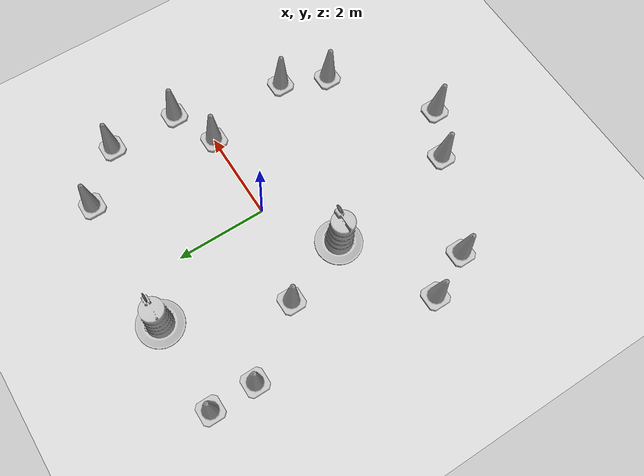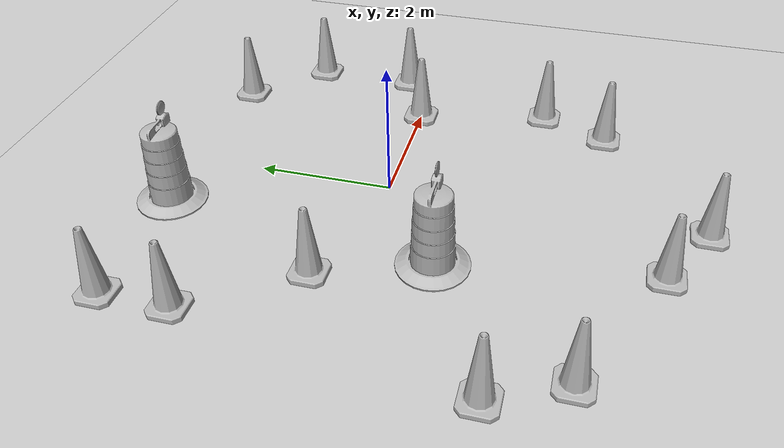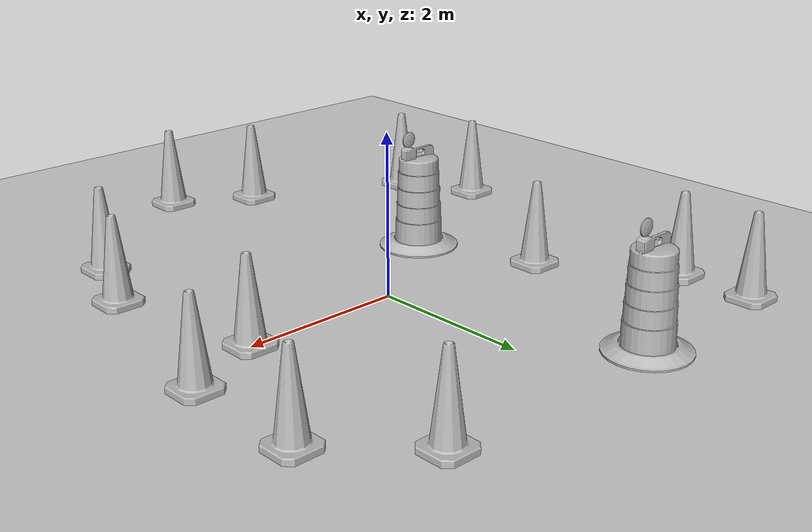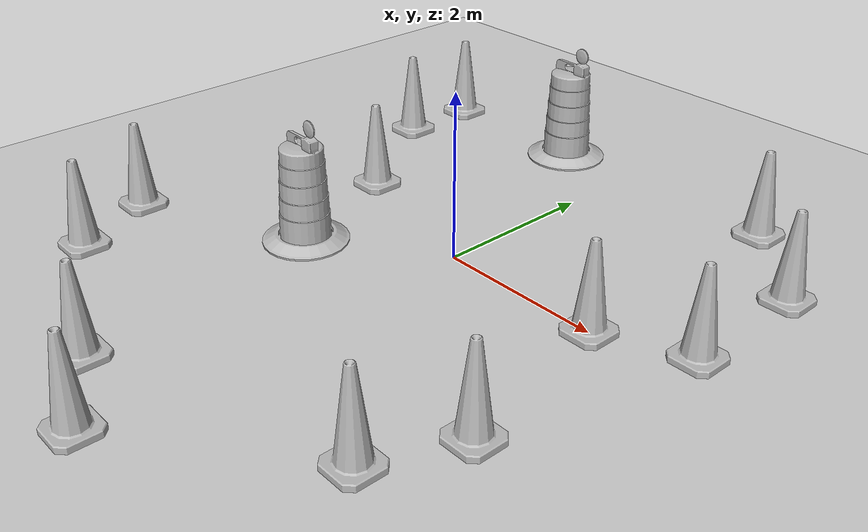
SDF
<sdf version="1.7">
 <world name="default">
  <light name="sun" type="directional">
   <pose>0 0 10 0 -0 0</pose>
   <diffuse>0.8 0.8 0.8 1</diffuse>
   <specular>0.2 0.2 0.2 1</specular>
   <attenuation>
    <range>1000</range>
    <constant>0.9</constant>
    <linear>0.01</linear>
    <quadratic>0.001</quadratic>
   </attenuation>
   <direction>-0.5 0.1 -0.9</direction>
   <spot><inner_angle>0</inner_angle><outer_angle>0</outer_angle><falloff>0</falloff></spot>
  </light>
  <model name="ground_plane">
   <static>1</static>
   <link name="link">
    <collision name="collision">
     <geometry><plane><normal>0 0 1</normal><size>100 100</size></plane></geometry>
     <surface>
      <contact><collide_bitmask>65535</collide_bitmask></contact>
      <friction><ode><mu>100</mu><mu2>50</mu2></ode></friction>
     </surface>
    </collision>
    <visual name="visual">
     <cast_shadows>0</cast_shadows>
     <geometry><plane><normal>0 0 1</normal><size>100 100</size></plane></geometry>
     <material>
      <script><uri>file://media/materials/scripts/gazebo.material</uri><name>Gazebo/Grey</name></script>
     </material>
    </visual>
   </link>
  </model>
  <gravity>0 0 -9.8</gravity>
  <magnetic_field>6e-06 2.3e-05 -4.2e-05</magnetic_field>
  <atmosphere type="adiabatic"/>
  <physics type="ode">
   <max_step_size>0.001</max_step_size>
   <real_time_factor>1</real_time_factor>
   <real_time_update_rate>1000</real_time_update_rate>
  </physics>
  <scene><ambient>0.4 0.4 0.4 1</ambient><background>0.7 0.7 0.7 1</background><shadows>1</shadows></scene>
  <audio><device>default</device></audio>
  <spherical_coordinates>
   <surface_model>EARTH_WGS84</surface_model>
   <latitude_deg>0</latitude_deg>
   <longitude_deg>0</longitude_deg>
   <elevation>0</elevation>
   <heading_deg>0</heading_deg>
  </spherical_coordinates>
  <model name="Construction Barrel">
   <link name="link">
    <inertial>
     <pose>0 0 0.4 0 -0 0</pose>
     <mass>500</mass>
     <inertia><ixx>51.2096</ixx><iyy>51.2096</iyy><izz>25</izz><ixy>0</ixy><ixz>0</ixz><iyz>0</iyz></inertia>
    </inertial>
    <collision name="collision">
     <geometry><mesh><uri>model://construction_barrel/meshes/construction_barrel.dae</uri></mesh></geometry>
    </collision>
    <visual name="visual">
     <geometry><mesh><uri>model://construction_barrel/meshes/construction_barrel.dae</uri></mesh></geometry>
    </visual>
   </link>
   <pose>-1.44338 -1.00003 -0 0 -0 -2.5e-05</pose>
  </model>
  <model name="Construction Barrel_0">
   <link name="link">
    <inertial>
     <pose>0 0 0.4 0 -0 0</pose>
     <mass>500</mass>
     <inertia><ixx>51.2096</ixx><iyy>51.2096</iyy><izz>25</izz><ixy>0</ixy><ixz>0</ixz><iyz>0</iyz></inertia>
    </inertial>
    <collision name="collision">
     <geometry><mesh><uri>model://construction_barrel/meshes/construction_barrel.dae</uri></mesh></geometry>
    </collision>
    <visual name="visual">
     <geometry><mesh><uri>model://construction_barrel/meshes/construction_barrel.dae</uri></mesh></geometry>
    </visual>
   </link>
   <pose>-1.00008 2.99997 -0 0 -0 -2.4e-05</pose>
  </model>
  <model name="Construction Cone">
   <link name="link">
    <collision name="collision">
     <geometry>
      <mesh><scale>10 10 10</scale><uri>model://construction_cone/meshes/construction_cone.dae</uri></mesh>
     </geometry>
    </collision>
    <visual name="visual">
     <geometry>
      <mesh><scale>10 10 10</scale><uri>model://construction_cone/meshes/construction_cone.dae</uri></mesh>
     </geometry>
    </visual>
    <inertial>
     <inertia><ixx>1</ixx><ixy>0</ixy><ixz>0</ixz><iyy>1</iyy><iyz>0</iyz><izz>1</izz></inertia>
     <mass>1</mass>
    </inertial>
   </link>
   <pose>2 0 -0 0 -1e-06 0</pose>
  </model>
  <model name="Construction Cone_0">
   <link name="link">
    <collision name="collision">
     <geometry>
      <mesh><scale>10 10 10</scale><uri>model://construction_cone/meshes/construction_cone.dae</uri></mesh>
     </geometry>
    </collision>
    <visual name="visual">
     <geometry>
      <mesh><scale>10 10 10</scale><uri>model://construction_cone/meshes/construction_cone.dae</uri></mesh>
     </geometry>
    </visual>
    <inertial>
     <inertia><ixx>1</ixx><ixy>0</ixy><ixz>0</ixz><iyy>1</iyy><iyz>0</iyz><izz>1</izz></inertia>
     <mass>1</mass>
    </inertial>
   </link>
   <pose>3 0.443499 -0 0 -0 0</pose>
  </model>
  <model name="Construction Cone_1">
   <link name="link">
    <collision name="collision">
     <geometry>
      <mesh><scale>10 10 10</scale><uri>model://construction_cone/meshes/construction_cone.dae</uri></mesh>
     </geometry>
    </collision>
    <visual name="visual">
     <geometry>
      <mesh><scale>10 10 10</scale><uri>model://construction_cone/meshes/construction_cone.dae</uri></mesh>
     </geometry>
    </visual>
    <inertial>
     <inertia><ixx>1</ixx><ixy>0</ixy><ixz>0</ixz><iyy>1</iyy><iyz>0</iyz><izz>1</izz></inertia>
     <mass>1</mass>
    </inertial>
   </link>
   <pose>2 -3 0 -0 -0 -0</pose>
  </model>
  <model name="Construction Cone_2">
   <link name="link">
    <collision name="collision">
     <geometry>
      <mesh><scale>10 10 10</scale><uri>model://construction_cone/meshes/construction_cone.dae</uri></mesh>
     </geometry>
    </collision>
    <visual name="visual">
     <geometry>
      <mesh><scale>10 10 10</scale><uri>model://construction_cone/meshes/construction_cone.dae</uri></mesh>
     </geometry>
    </visual>
    <inertial>
     <inertia><ixx>1</ixx><ixy>0</ixy><ixz>0</ixz><iyy>1</iyy><iyz>0</iyz><izz>1</izz></inertia>
     <mass>1</mass>
    </inertial>
   </link>
   <pose>-0 -4.56628 -0 1e-06 -0 0</pose>
  </model>
  <model name="Construction Cone_3">
   <link name="link">
    <collision name="collision">
     <geometry>
      <mesh><scale>10 10 10</scale><uri>model://construction_cone/meshes/construction_cone.dae</uri></mesh>
     </geometry>
    </collision>
    <visual name="visual">
     <geometry>
      <mesh><scale>10 10 10</scale><uri>model://construction_cone/meshes/construction_cone.dae</uri></mesh>
     </geometry>
    </visual>
    <inertial>
     <inertia><ixx>1</ixx><ixy>0</ixy><ixz>0</ixz><iyy>1</iyy><iyz>0</iyz><izz>1</izz></inertia>
     <mass>1</mass>
    </inertial>
   </link>
   <pose>3 2 -0 -0 -0 -0</pose>
  </model>
  <model name="Construction Cone_4">
   <link name="link">
    <collision name="collision">
     <geometry>
      <mesh><scale>10 10 10</scale><uri>model://construction_cone/meshes/construction_cone.dae</uri></mesh>
     </geometry>
    </collision>
    <visual name="visual">
     <geometry>
      <mesh><scale>10 10 10</scale><uri>model://construction_cone/meshes/construction_cone.dae</uri></mesh>
     </geometry>
    </visual>
    <inertial>
     <inertia><ixx>1</ixx><ixy>0</ixy><ixz>0</ixz><iyy>1</iyy><iyz>0</iyz><izz>1</izz></inertia>
     <mass>1</mass>
    </inertial>
   </link>
   <pose>2 3 -0 0 -1e-06 0</pose>
  </model>
  <model name="Construction Cone_5">
   <link name="link">
    <collision name="collision">
     <geometry>
      <mesh><scale>10 10 10</scale><uri>model://construction_cone/meshes/construction_cone.dae</uri></mesh>
     </geometry>
    </collision>
    <visual name="visual">
     <geometry>
      <mesh><scale>10 10 10</scale><uri>model://construction_cone/meshes/construction_cone.dae</uri></mesh>
     </geometry>
    </visual>
    <inertial>
     <inertia><ixx>1</ixx><ixy>0</ixy><ixz>0</ixz><iyy>1</iyy><iyz>0</iyz><izz>1</izz></inertia>
     <mass>1</mass>
    </inertial>
   </link>
   <pose>-1 -4 -0 -0 -0 -0</pose>
  </model>
  <model name="Construction Cone_6">
   <link name="link">
    <collision name="collision">
     <geometry>
      <mesh><scale>10 10 10</scale><uri>model://construction_cone/meshes/construction_cone.dae</uri></mesh>
     </geometry>
    </collision>
    <visual name="visual">
     <geometry>
      <mesh><scale>10 10 10</scale><uri>model://construction_cone/meshes/construction_cone.dae</uri></mesh>
     </geometry>
    </visual>
    <inertial>
     <inertia><ixx>1</ixx><ixy>0</ixy><ixz>0</ixz><iyy>1</iyy><iyz>0</iyz><izz>1</izz></inertia>
     <mass>1</mass>
    </inertial>
   </link>
   <pose>2.41848 -2 -9e-06 1e-06 -0 0</pose>
  </model>
  <model name="Construction Cone_7">
   <link name="link">
    <collision name="collision">
     <geometry>
      <mesh><scale>10 10 10</scale><uri>model://construction_cone/meshes/construction_cone.dae</uri></mesh>
     </geometry>
    </collision>
    <visual name="visual">
     <geometry>
      <mesh><scale>10 10 10</scale><uri>model://construction_cone/meshes/construction_cone.dae</uri></mesh>
     </geometry>
    </visual>
    <inertial>
     <inertia><ixx>1</ixx><ixy>0</ixy><ixz>0</ixz><iyy>1</iyy><iyz>0</iyz><izz>1</izz></inertia>
     <mass>1</mass>
    </inertial>
   </link>
   <pose>-2 0.524067 -0 0 -0 0</pose>
  </model>
  <model name="Construction Cone_8">
   <link name="link">
    <collision name="collision">
     <geometry>
      <mesh><scale>10 10 10</scale><uri>model://construction_cone/meshes/construction_cone.dae</uri></mesh>
     </geometry>
    </collision>
    <visual name="visual">
     <geometry>
      <mesh><scale>10 10 10</scale><uri>model://construction_cone/meshes/construction_cone.dae</uri></mesh>
     </geometry>
    </visual>
    <inertial>
     <inertia><ixx>1</ixx><ixy>0</ixy><ixz>0</ixz><iyy>1</iyy><iyz>0</iyz><izz>1</izz></inertia>
     <mass>1</mass>
    </inertial>
   </link>
   <pose>-3 -3 -0 0 -1e-06 0</pose>
  </model>
  <model name="Construction Cone_9">
   <link name="link">
    <collision name="collision">
     <geometry>
      <mesh><scale>10 10 10</scale><uri>model://construction_cone/meshes/construction_cone.dae</uri></mesh>
     </geometry>
    </collision>
    <visual name="visual">
     <geometry>
      <mesh><scale>10 10 10</scale><uri>model://construction_cone/meshes/construction_cone.dae</uri></mesh>
     </geometry>
    </visual>
    <inertial>
     <inertia><ixx>1</ixx><ixy>0</ixy><ixz>0</ixz><iyy>1</iyy><iyz>0</iyz><izz>1</izz></inertia>
     <mass>1</mass>
    </inertial>
   </link>
   <pose>-3.46596 -2 -0 0 -0 0</pose>
  </model>
  <model name="Construction Cone_10">
   <link name="link">
    <collision name="collision">
     <geometry>
      <mesh><scale>10 10 10</scale><uri>model://construction_cone/meshes/construction_cone.dae</uri></mesh>
     </geometry>
    </collision>
    <visual name="visual">
     <geometry>
      <mesh><scale>10 10 10</scale><uri>model://construction_cone/meshes/construction_cone.dae</uri></mesh>
     </geometry>
    </visual>
    <inertial>
     <inertia><ixx>1</ixx><ixy>0</ixy><ixz>0</ixz><iyy>1</iyy><iyz>0</iyz><izz>1</izz></inertia>
     <mass>1</mass>
    </inertial>
   </link>
   <pose>-3 2 -1e-05 -1e-06 0 0</pose>
  </model>
  <model name="Construction Cone_11">
   <link name="link">
    <collision name="collision">
     <geometry>
      <mesh><scale>10 10 10</scale><uri>model://construction_cone/meshes/construction_cone.dae</uri></mesh>
     </geometry>
    </collision>
    <visual name="visual">
     <geometry>
      <mesh><scale>10 10 10</scale><uri>model://construction_cone/meshes/construction_cone.dae</uri></mesh>
     </geometry>
    </visual>
    <inertial>
     <inertia><ixx>1</ixx><ixy>0</ixy><ixz>0</ixz><iyy>1</iyy><iyz>0</iyz><izz>1</izz></inertia>
     <mass>1</mass>
    </inertial>
   </link>
   <pose>-3 3 -0 0 -1e-06 0</pose>
  </model>
 </world>
</sdf>
